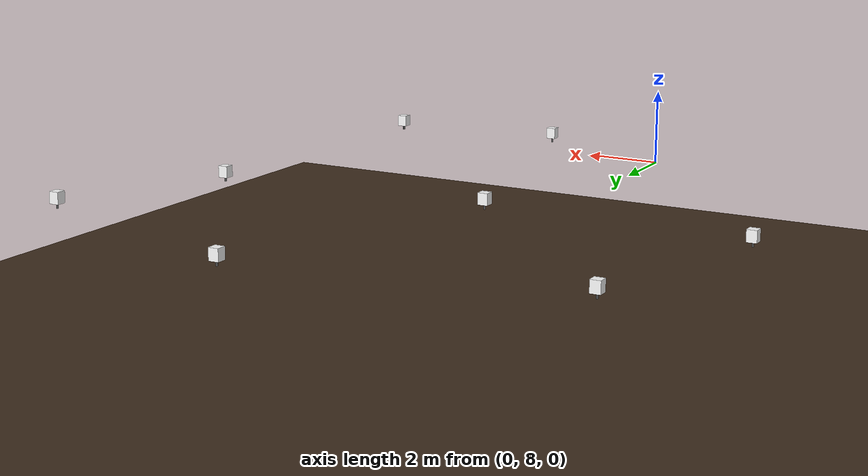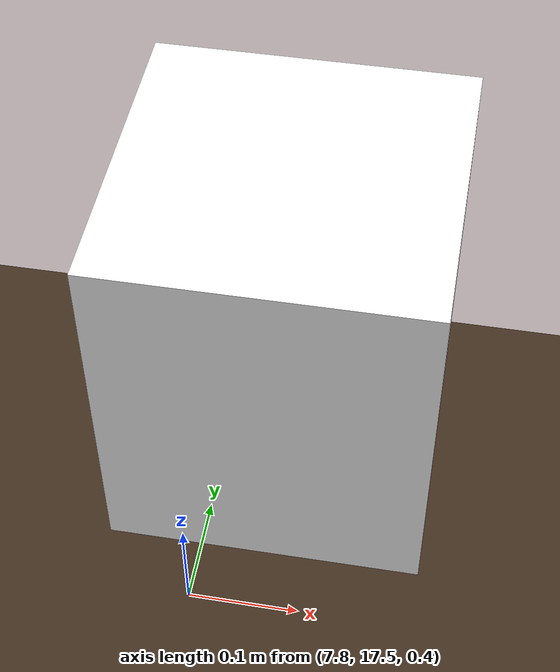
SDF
<sdf version="1.10">
 <world name="leo_marsyard">
  <physics name="1ms" type="ignored">
   <max_step_size>0.001</max_step_size>
   <real_time_factor>1</real_time_factor>
   <dart>
    <collision_detector>bullet</collision_detector>
    <solver><solver_type>dantzig</solver_type></solver>
   </dart>
   <real_time_update_rate>1000</real_time_update_rate>
  </physics>
  <plugin name="gz::sim::systems::Physics" filename="gz-sim-physics-system"/>
  <plugin name="gz::sim::systems::Contact" filename="gz-sim-contact-system"/>
  <plugin name="gz::sim::systems::Sensors" filename="gz-sim-sensors-system">
   <render_engine>ogre2</render_engine>
  </plugin>
  <plugin name="gz::sim::systems::SceneBroadcaster" filename="gz-sim-scene-broadcaster-system"/>
  <plugin name="gz::sim::systems::UserCommands" filename="gz-sim-user-commands-system"/>
  <plugin name="gz::sim::systems::Imu" filename="gz-sim-imu-system"/>
  <gravity>0 0 -9.8000000000000007</gravity>
  <magnetic_field>5.5644999999999998e-06 2.2875799999999999e-05 -4.2388400000000002e-05</magnetic_field>
  <atmosphere type="adiabatic"/>
  <scene>
   <ambient>0.400000006 0.400000006 0.400000006 1</ambient>
   <background>0.699999988 0.699999988 0.699999988 1</background>
   <sky><cubemap_uri>dem/milkyway_starry_sky.dds</cubemap_uri></sky>
   <shadows>true</shadows>
  </scene>
  <model name="out_of_bounds_ground_plane">
   <static>true</static>
   <pose>0.19 14.02 -3.0 0 0 0</pose>
   <link name="link">
    <collision name="collision">
     <geometry><plane><normal>0 0 1</normal><size>400 400</size></plane></geometry>
    </collision>
    <visual name="visual">
     <geometry><plane><normal>0 0 1</normal><size>400 400</size></plane></geometry>
     <material><ambient>0.2 0.15 0.1 1</ambient><diffuse>0.25 0.18 0.12 1</diffuse></material>
    </visual>
   </link>
  </model>
  <light name="sun" type="directional">
   <pose>0 0 10 0 0 0</pose>
   <intensity>1</intensity>
   <direction>-0.5 0.10000000000000001 -0.90000000000000002</direction>
   <diffuse>0.800000012 0.800000012 0.800000012 1</diffuse>
   <specular>0.200000003 0.200000003 0.200000003 1</specular>
   <attenuation>
    <range>1000</range>
    <linear>0.01</linear>
    <constant>0.90000000000000002</constant>
    <quadratic>0.001</quadratic>
   </attenuation>
   <spot><inner_angle>0</inner_angle><outer_angle>0</outer_angle><falloff>0</falloff></spot>
  </light>
  <include>
   <name>aruco_marker_51_L1</name>
   <uri>model://aruco_marker_51</uri>
   <pose>3.183 8.012 0.288 0 0 0</pose>
  </include>
  <include>
   <name>aruco_marker_52_L2</name>
   <uri>model://aruco_marker_52</uri>
   <pose>7.269 9.482 0.517 0 0 0</pose>
  </include>
  <include>
   <name>aruco_marker_53_L3</name>
   <uri>model://aruco_marker_53</uri>
   <pose>7.878 17.583 0.436 0 0 0</pose>
  </include>
  <include>
   <name>aruco_marker_54_L4</name>
   <uri>model://aruco_marker_54</uri>
   <pose>9.225 22.389 0.568 0 0 0</pose>
  </include>
  <include>
   <name>aruco_marker_55_L5</name>
   <uri>model://aruco_marker_55</uri>
   <pose>3.518 23.990 0.339 0 0 0</pose>
  </include>
  <include>
   <name>aruco_marker_56_L6</name>
   <uri>model://aruco_marker_56</uri>
   <pose>0.882 16.870 0.391 0 0 0</pose>
  </include>
  <include>
   <name>aruco_marker_57_L7</name>
   <uri>model://aruco_marker_57</uri>
   <pose>-3.944 21.415 0.071 0 0 0</pose>
  </include>
  <include>
   <name>aruco_marker_58_L8</name>
   <uri>model://aruco_marker_58</uri>
   <pose>-5.491 16.334 0.179 0 0 0</pose>
  </include>
 </world>
</sdf>

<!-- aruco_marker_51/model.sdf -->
<sdf version="1.10">
  <model name="aruco_marker_51">
    <static>true</static>
    <link name="link">
      <visual name="post_visual">
        <pose>0 0 0.06 0 0 0</pose>
        <geometry>
          <cylinder>
            <radius>0.025</radius>
            <length>0.12</length>
          </cylinder>
        </geometry>
        <material>
          <ambient>0.3 0.3 0.3 1</ambient>
          <diffuse>0.3 0.3 0.3 1</diffuse>
        </material>
      </visual>
      <collision name="post_collision">
        <pose>0 0 0.06 0 0 0</pose>
        <geometry>
          <cylinder>
            <radius>0.025</radius>
            <length>0.12</length>
          </cylinder>
        </geometry>
      </collision>
      <visual name="sign_visual">
        <pose>0 0 0.26849999999999996 0 0 0</pose>
        <geometry>
          <box>
            <size>0.25 0.25 0.297</size>
          </box>
        </geometry>
        <material>
          <ambient>1 1 1 1</ambient>
          <diffuse>1 1 1 1</diffuse>
          <pbr>
            <metal>
              <albedo_map>materials/textures/sign_51.png</albedo_map>
              <roughness>0.8</roughness>
              <metalness>0.0</metalness>
            </metal>
          </pbr>
        </material>
      </visual>
      <collision name="sign_collision">
        <pose>0 0 0.26849999999999996 0 0 0</pose>
        <geometry>
          <box>
            <size>0.25 0.25 0.297</size>
          </box>
        </geometry>
      </collision>
    </link>
  </model>
</sdf>

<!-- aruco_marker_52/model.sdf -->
<sdf version="1.10">
  <model name="aruco_marker_52">
    <static>true</static>
    <link name="link">
      <visual name="post_visual">
        <pose>0 0 0.06 0 0 0</pose>
        <geometry>
          <cylinder>
            <radius>0.025</radius>
            <length>0.12</length>
          </cylinder>
        </geometry>
        <material>
          <ambient>0.3 0.3 0.3 1</ambient>
          <diffuse>0.3 0.3 0.3 1</diffuse>
        </material>
      </visual>
      <collision name="post_collision">
        <pose>0 0 0.06 0 0 0</pose>
        <geometry>
          <cylinder>
            <radius>0.025</radius>
            <length>0.12</length>
          </cylinder>
        </geometry>
      </collision>
      <visual name="sign_visual">
        <pose>0 0 0.26849999999999996 0 0 0</pose>
        <geometry>
          <box>
            <size>0.25 0.25 0.297</size>
          </box>
        </geometry>
        <material>
          <ambient>1 1 1 1</ambient>
          <diffuse>1 1 1 1</diffuse>
          <pbr>
            <metal>
              <albedo_map>materials/textures/sign_52.png</albedo_map>
              <roughness>0.8</roughness>
              <metalness>0.0</metalness>
            </metal>
          </pbr>
        </material>
      </visual>
      <collision name="sign_collision">
        <pose>0 0 0.26849999999999996 0 0 0</pose>
        <geometry>
          <box>
            <size>0.25 0.25 0.297</size>
          </box>
        </geometry>
      </collision>
    </link>
  </model>
</sdf>

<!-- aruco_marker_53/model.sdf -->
<sdf version="1.10">
  <model name="aruco_marker_53">
    <static>true</static>
    <link name="link">
      <visual name="post_visual">
        <pose>0 0 0.06 0 0 0</pose>
        <geometry>
          <cylinder>
            <radius>0.025</radius>
            <length>0.12</length>
          </cylinder>
        </geometry>
        <material>
          <ambient>0.3 0.3 0.3 1</ambient>
          <diffuse>0.3 0.3 0.3 1</diffuse>
        </material>
      </visual>
      <collision name="post_collision">
        <pose>0 0 0.06 0 0 0</pose>
        <geometry>
          <cylinder>
            <radius>0.025</radius>
            <length>0.12</length>
          </cylinder>
        </geometry>
      </collision>
      <visual name="sign_visual">
        <pose>0 0 0.26849999999999996 0 0 0</pose>
        <geometry>
          <box>
            <size>0.25 0.25 0.297</size>
          </box>
        </geometry>
        <material>
          <ambient>1 1 1 1</ambient>
          <diffuse>1 1 1 1</diffuse>
          <pbr>
            <metal>
              <albedo_map>materials/textures/sign_53.png</albedo_map>
              <roughness>0.8</roughness>
              <metalness>0.0</metalness>
            </metal>
          </pbr>
        </material>
      </visual>
      <collision name="sign_collision">
        <pose>0 0 0.26849999999999996 0 0 0</pose>
        <geometry>
          <box>
            <size>0.25 0.25 0.297</size>
          </box>
        </geometry>
      </collision>
    </link>
  </model>
</sdf>

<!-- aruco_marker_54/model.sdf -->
<sdf version="1.10">
  <model name="aruco_marker_54">
    <static>true</static>
    <link name="link">
      <visual name="post_visual">
        <pose>0 0 0.06 0 0 0</pose>
        <geometry>
          <cylinder>
            <radius>0.025</radius>
            <length>0.12</length>
          </cylinder>
        </geometry>
        <material>
          <ambient>0.3 0.3 0.3 1</ambient>
          <diffuse>0.3 0.3 0.3 1</diffuse>
        </material>
      </visual>
      <collision name="post_collision">
        <pose>0 0 0.06 0 0 0</pose>
        <geometry>
          <cylinder>
            <radius>0.025</radius>
            <length>0.12</length>
          </cylinder>
        </geometry>
      </collision>
      <visual name="sign_visual">
        <pose>0 0 0.26849999999999996 0 0 0</pose>
        <geometry>
          <box>
            <size>0.25 0.25 0.297</size>
          </box>
        </geometry>
        <material>
          <ambient>1 1 1 1</ambient>
          <diffuse>1 1 1 1</diffuse>
          <pbr>
            <metal>
              <albedo_map>materials/textures/sign_54.png</albedo_map>
              <roughness>0.8</roughness>
              <metalness>0.0</metalness>
            </metal>
          </pbr>
        </material>
      </visual>
      <collision name="sign_collision">
        <pose>0 0 0.26849999999999996 0 0 0</pose>
        <geometry>
          <box>
            <size>0.25 0.25 0.297</size>
          </box>
        </geometry>
      </collision>
    </link>
  </model>
</sdf>

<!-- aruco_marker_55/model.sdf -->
<sdf version="1.10">
  <model name="aruco_marker_55">
    <static>true</static>
    <link name="link">
      <visual name="post_visual">
        <pose>0 0 0.06 0 0 0</pose>
        <geometry>
          <cylinder>
            <radius>0.025</radius>
            <length>0.12</length>
          </cylinder>
        </geometry>
        <material>
          <ambient>0.3 0.3 0.3 1</ambient>
          <diffuse>0.3 0.3 0.3 1</diffuse>
        </material>
      </visual>
      <collision name="post_collision">
        <pose>0 0 0.06 0 0 0</pose>
        <geometry>
          <cylinder>
            <radius>0.025</radius>
            <length>0.12</length>
          </cylinder>
        </geometry>
      </collision>
      <visual name="sign_visual">
        <pose>0 0 0.26849999999999996 0 0 0</pose>
        <geometry>
          <box>
            <size>0.25 0.25 0.297</size>
          </box>
        </geometry>
        <material>
          <ambient>1 1 1 1</ambient>
          <diffuse>1 1 1 1</diffuse>
          <pbr>
            <metal>
              <albedo_map>materials/textures/sign_55.png</albedo_map>
              <roughness>0.8</roughness>
              <metalness>0.0</metalness>
            </metal>
          </pbr>
        </material>
      </visual>
      <collision name="sign_collision">
        <pose>0 0 0.26849999999999996 0 0 0</pose>
        <geometry>
          <box>
            <size>0.25 0.25 0.297</size>
          </box>
        </geometry>
      </collision>
    </link>
  </model>
</sdf>

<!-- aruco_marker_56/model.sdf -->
<sdf version="1.10">
  <model name="aruco_marker_56">
    <static>true</static>
    <link name="link">
      <visual name="post_visual">
        <pose>0 0 0.06 0 0 0</pose>
        <geometry>
          <cylinder>
            <radius>0.025</radius>
            <length>0.12</length>
          </cylinder>
        </geometry>
        <material>
          <ambient>0.3 0.3 0.3 1</ambient>
          <diffuse>0.3 0.3 0.3 1</diffuse>
        </material>
      </visual>
      <collision name="post_collision">
        <pose>0 0 0.06 0 0 0</pose>
        <geometry>
          <cylinder>
            <radius>0.025</radius>
            <length>0.12</length>
          </cylinder>
        </geometry>
      </collision>
      <visual name="sign_visual">
        <pose>0 0 0.26849999999999996 0 0 0</pose>
        <geometry>
          <box>
            <size>0.25 0.25 0.297</size>
          </box>
        </geometry>
        <material>
          <ambient>1 1 1 1</ambient>
          <diffuse>1 1 1 1</diffuse>
          <pbr>
            <metal>
              <albedo_map>materials/textures/sign_56.png</albedo_map>
              <roughness>0.8</roughness>
              <metalness>0.0</metalness>
            </metal>
          </pbr>
        </material>
      </visual>
      <collision name="sign_collision">
        <pose>0 0 0.26849999999999996 0 0 0</pose>
        <geometry>
          <box>
            <size>0.25 0.25 0.297</size>
          </box>
        </geometry>
      </collision>
    </link>
  </model>
</sdf>

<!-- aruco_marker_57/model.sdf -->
<sdf version="1.10">
  <model name="aruco_marker_57">
    <static>true</static>
    <link name="link">
      <visual name="post_visual">
        <pose>0 0 0.06 0 0 0</pose>
        <geometry>
          <cylinder>
            <radius>0.025</radius>
            <length>0.12</length>
          </cylinder>
        </geometry>
        <material>
          <ambient>0.3 0.3 0.3 1</ambient>
          <diffuse>0.3 0.3 0.3 1</diffuse>
        </material>
      </visual>
      <collision name="post_collision">
        <pose>0 0 0.06 0 0 0</pose>
        <geometry>
          <cylinder>
            <radius>0.025</radius>
            <length>0.12</length>
          </cylinder>
        </geometry>
      </collision>
      <visual name="sign_visual">
        <pose>0 0 0.26849999999999996 0 0 0</pose>
        <geometry>
          <box>
            <size>0.25 0.25 0.297</size>
          </box>
        </geometry>
        <material>
          <ambient>1 1 1 1</ambient>
          <diffuse>1 1 1 1</diffuse>
          <pbr>
            <metal>
              <albedo_map>materials/textures/sign_57.png</albedo_map>
              <roughness>0.8</roughness>
              <metalness>0.0</metalness>
            </metal>
          </pbr>
        </material>
      </visual>
      <collision name="sign_collision">
        <pose>0 0 0.26849999999999996 0 0 0</pose>
        <geometry>
          <box>
            <size>0.25 0.25 0.297</size>
          </box>
        </geometry>
      </collision>
    </link>
  </model>
</sdf>

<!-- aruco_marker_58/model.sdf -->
<sdf version="1.10">
  <model name="aruco_marker_58">
    <static>true</static>
    <link name="link">
      <visual name="post_visual">
        <pose>0 0 0.06 0 0 0</pose>
        <geometry>
          <cylinder>
            <radius>0.025</radius>
            <length>0.12</length>
          </cylinder>
        </geometry>
        <material>
          <ambient>0.3 0.3 0.3 1</ambient>
          <diffuse>0.3 0.3 0.3 1</diffuse>
        </material>
      </visual>
      <collision name="post_collision">
        <pose>0 0 0.06 0 0 0</pose>
        <geometry>
          <cylinder>
            <radius>0.025</radius>
            <length>0.12</length>
          </cylinder>
        </geometry>
      </collision>
      <visual name="sign_visual">
        <pose>0 0 0.26849999999999996 0 0 0</pose>
        <geometry>
          <box>
            <size>0.25 0.25 0.297</size>
          </box>
        </geometry>
        <material>
          <ambient>1 1 1 1</ambient>
          <diffuse>1 1 1 1</diffuse>
          <pbr>
            <metal>
              <albedo_map>materials/textures/sign_58.png</albedo_map>
              <roughness>0.8</roughness>
              <metalness>0.0</metalness>
            </metal>
          </pbr>
        </material>
      </visual>
      <collision name="sign_collision">
        <pose>0 0 0.26849999999999996 0 0 0</pose>
        <geometry>
          <box>
            <size>0.25 0.25 0.297</size>
          </box>
        </geometry>
      </collision>
    </link>
  </model>
</sdf>
